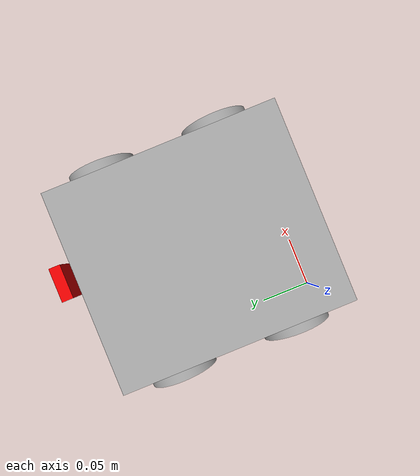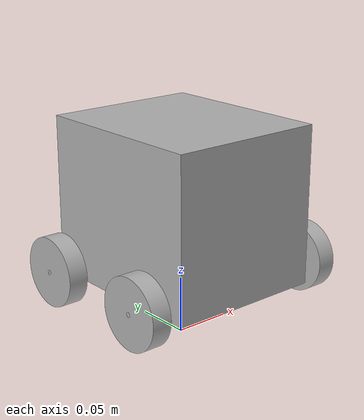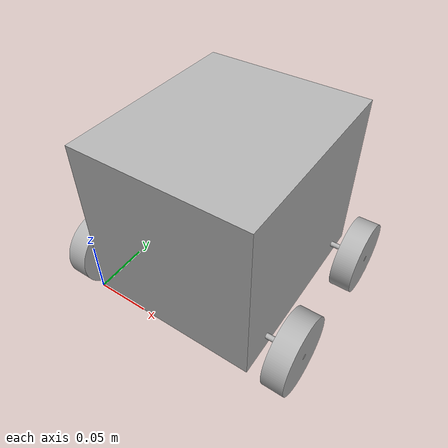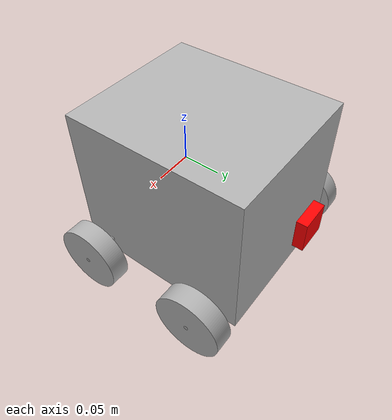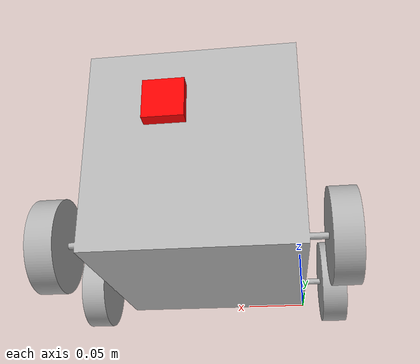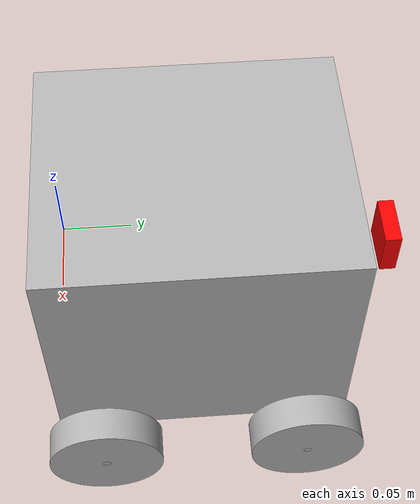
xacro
<?xml version="1.0" ?>
<robot name="myrt" xmlns:xacro="http://www.ros.org/wiki/xacro">

  <xacro:include filename="$(find myrt_description)/urdf/materials.xacro" />
<xacro:include filename="$(find myrt_description)/urdf/ros2_control.xacro" />
<xacro:include filename="$(find myrt_description)/urdf/myrt_gazebo.xacro" />
<xacro:include filename="$(find myrt_description)/urdf/camera.xacro" />

<link name="base_link">
  <inertial>
    <origin xyz="0.08 0.0924 0.0799" rpy="0 0 0"/>
    <mass value="37.199178814539344"/>
    <inertia ixx="0.1855" iyy="0.1589" izz="0.1856" ixy="0.0" iyz="-0.0" ixz="0.0"/>
  </inertial>
  <visual>
    <origin xyz="0 0 0" rpy="0 0 0"/>
    <geometry>
      <mesh filename="file://$(find myrt_description)/meshes/base_link.stl" scale="0.001 0.001 0.001"/>
    </geometry>
    <material name="silver"/>
  </visual>
  <collision>
    <origin xyz="0 0 0" rpy="0 0 0"/>
    <geometry>
      <mesh filename="file://$(find myrt_description)/meshes/base_link.stl" scale="0.001 0.001 0.001"/>
    </geometry>
  </collision>
</link>

<link name="rr_link_1">
  <inertial>
    <origin xyz="-0.01000 -1.36e-15 -6.938e-18" rpy="0 0 0"/>
    <mass value="0.6011"/>
    <inertia ixx="0.00037" iyy="0.000205" izz="0.000205" ixy="0.0" iyz="0.0" ixz="0.0"/>
  </inertial>
  <visual>
    <origin xyz="-0.195 -0.155 -0.015" rpy="0 0 0"/>
    <geometry>
      <mesh filename="file://$(find myrt_description)/meshes/rr_link_1.stl" scale="0.001 0.001 0.001"/>
    </geometry>
    <material name="silver"/>
  </visual>
  <collision>
    <origin xyz="-0.195 -0.155 -0.015" rpy="0 0 0"/>
    <geometry>
      <mesh filename="file://$(find myrt_description)/meshes/rr_link_1.stl" scale="0.001 0.001 0.001"/>
    </geometry>
  </collision>
</link>

<link name="lf_link_1">
  <inertial>
    <origin xyz="0.010000000000000002 1.33e-15 3.46e-18" rpy="0 0 0"/>
    <mass value="0.6011241193103217"/>
    <inertia ixx="0.00037" iyy="0.000205" izz="0.000205" ixy="-0.0" iyz="-0.0" ixz="-0.0"/>
  </inertial>
  <visual>
    <origin xyz="0.035 -0.03 -0.015" rpy="0 0 0"/>
    <geometry>
      <mesh filename="file://$(find myrt_description)/meshes/lf_link_1.stl" scale="0.001 0.001 0.001"/>
    </geometry>
    <material name="silver"/>
  </visual>
  <collision>
    <origin xyz="0.035 -0.03 -0.015" rpy="0 0 0"/>
    <geometry>
      <mesh filename="file://$(find myrt_description)/meshes/lf_link_1.stl" scale="0.001 0.001 0.001"/>
    </geometry>
  </collision>
</link>

<link name="lr_link_1">
  <inertial>
    <origin xyz="0.010000000000000002 1.3600232051658168e-15 -6.938893903907228e-18" rpy="0 0 0"/>
    <mass value="0.6011241193103218"/>
    <inertia ixx="0.00037" iyy="0.000205" izz="0.000205" ixy="-0.0" iyz="0.0" ixz="-0.0"/>
  </inertial>
  <visual>
    <origin xyz="0.035 -0.155 -0.015" rpy="0 0 0"/>
    <geometry>
      <mesh filename="file://$(find myrt_description)/meshes/lr_link_1.stl" scale="0.001 0.001 0.001"/>
    </geometry>
    <material name="silver"/>
  </visual>
  <collision>
    <origin xyz="0.035 -0.155 -0.015" rpy="0 0 0"/>
    <geometry>
      <mesh filename="file://$(find myrt_description)/meshes/lr_link_1.stl" scale="0.001 0.001 0.001"/>
    </geometry>
  </collision>
</link>

<link name="rf_link_1">
  <inertial>
    <origin xyz="-0.010000000000000009 -1.3357370765021415e-15 0.0" rpy="0 0 0"/>
    <mass value="0.6011241193103218"/>
    <inertia ixx="0.00037" iyy="0.000205" izz="0.000205" ixy="0.0" iyz="-0.0" ixz="0.0"/>
  </inertial>
  <visual>
    <origin xyz="-0.195 -0.03 -0.015" rpy="0 0 0"/>
    <geometry>
      <mesh filename="file://$(find myrt_description)/meshes/rf_link_1.stl" scale="0.001 0.001 0.001"/>
    </geometry>
    <material name="silver"/>
  </visual>
  <collision>
    <origin xyz="-0.195 -0.03 -0.015" rpy="0 0 0"/>
    <geometry>
      <mesh filename="file://$(find myrt_description)/meshes/rf_link_1.stl" scale="0.001 0.001 0.001"/>
    </geometry>
  </collision>
</link>

<joint name="left_front_joint" type="continuous">
  <origin xyz="-0.035 0.03 0.015" rpy="0 0 0"/>
  <parent link="base_link"/>
  <child link="lf_link_1"/>
  <axis xyz="-1.0 0.0 0.0"/>
</joint>

<joint name="left_rear_joint" type="continuous">
  <origin xyz="-0.035 0.155 0.015" rpy="0 0 0"/>
  <parent link="base_link"/>
  <child link="lr_link_1"/>
  <axis xyz="-1.0 0.0 0.0"/>
</joint>

<joint name="right_front_joint" type="continuous">
  <origin xyz="0.195 0.03 0.015" rpy="0 0 0"/>
  <parent link="base_link"/>
  <child link="rf_link_1"/>
  <axis xyz="1.0 0.0 0.0"/>
</joint>

<joint name="right_rear_joint" type="continuous">
  <origin xyz="0.195 0.155 0.015" rpy="0 0 0"/>
  <parent link="base_link"/>
  <child link="rr_link_1"/>
  <axis xyz="1.0 0.0 0.0"/>
</joint>

<xacro:add_camera parent="base_link"/>
</robot>

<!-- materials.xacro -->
<robot name="myrt" xmlns:xacro="http://www.ros.org/wiki/xacro" >

<material name="silver">
  <color rgba="0.700 0.700 0.700 1.000"/>
</material>
<material name="red">
  <color rgba="1 0 0 1"/>
</material>

</robot>

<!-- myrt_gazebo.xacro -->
<robot name="myrt" xmlns:xacro="http://www.ros.org/wiki/xacro" >

<xacro:property name="body_color" value="Gazebo/Silver" />

<gazebo reference="base_link">
  <material>${body_color}</material>
  <mu1>0.2</mu1>
  <mu2>0.2</mu2>
  <self_collide>true</self_collide>
  <gravity>true</gravity>
</gazebo>

<gazebo reference="rr_link_1">
  <material>${body_color}</material>
  <mu1>0.2</mu1>
  <mu2>0.2</mu2>
  <self_collide>true</self_collide>
</gazebo>

<gazebo reference="lf_link_1">
  <material>${body_color}</material>
  <mu1>0.2</mu1>
  <mu2>0.2</mu2>
  <self_collide>true</self_collide>
</gazebo>

<gazebo reference="lr_link_1">
  <material>${body_color}</material>
  <mu1>0.2</mu1>
  <mu2>0.2</mu2>
  <self_collide>true</self_collide>
</gazebo>

<gazebo reference="rf_link_1">
  <material>${body_color}</material>
  <mu1>0.2</mu1>
  <mu2>0.2</mu2>
  <self_collide>true</self_collide>
</gazebo>

<gazebo>
    <plugin filename="libgazebo_ros2_control.so" name="gazebo_ros2_control">
      <robot_param>robot_description</robot_param>
      <robot_param_node>robot_state_publisher</robot_param_node>
      <parameters>$(find myrt_controller)/config/myrt_controllers.yaml</parameters>
    </plugin>
  </gazebo>

</robot>

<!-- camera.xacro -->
<robot xmlns:xacro="http://www.ros.org/wiki/xacro">

  <xacro:macro name="add_camera" params="parent">
    <joint name="camera_joint" type="fixed">
      <parent link="${parent}"/>
      <child link="camera_link"/>
      <origin xyz="0.095 0.21 0.1" rpy="0 0 1.5708"/>
    </joint>

    <link name="camera_link">
      <visual>
        <geometry>
          <box size="0.010 0.03 0.03"/>
        </geometry>
        <material name="red"/>
      </visual>
      <collision>
        <geometry>
          <box size="0.010 0.03 0.03"/>
        </geometry>
      </collision>
      <inertial>
        <mass value="0.1"/>
        <inertia ixx="0.000016667" iyy="0.000016667" izz="0.000016667" ixy="0" ixz="0" iyz="0"/>
      </inertial>
    </link>

    <joint name="camera_optical_joint" type="fixed">
      <parent link="camera_link"/>
      <child link="camera_link_optical"/>
      <origin xyz="0 0 0" rpy="${-pi/2} 0 ${-pi/2}"/>
    </joint>

    <link name="camera_link_optical"/>

    <gazebo reference="camera_link">
      <material>Gazebo/Red</material>
      <sensor name="camera" type="camera">
        <pose> 0 0 0 0 0 0 </pose>
        <visualize>true</visualize>
        <update_rate>10</update_rate>
        <camera>
          <horizontal_fov>1.089</horizontal_fov>
          <image>
            <format>R8G8B8</format>
            <width>640</width>
            <height>480</height>
          </image>
          <clip>
            <near>0.05</near>
            <far>8.0</far>
          </clip>
        </camera>
        <plugin name="camera_controller" filename="libgazebo_ros_camera.so">
          <frame_name>camera_link_optical</frame_name>
        </plugin>
      </sensor>
    </gazebo>
  </xacro:macro>

</robot>
